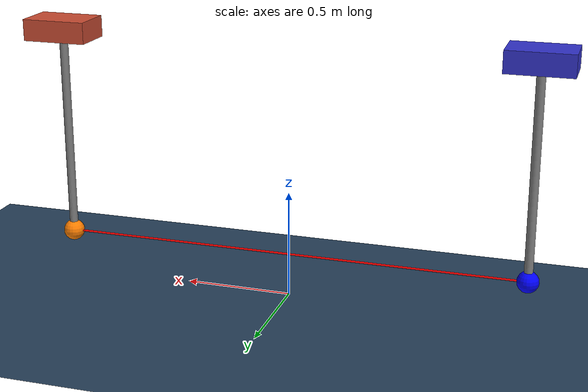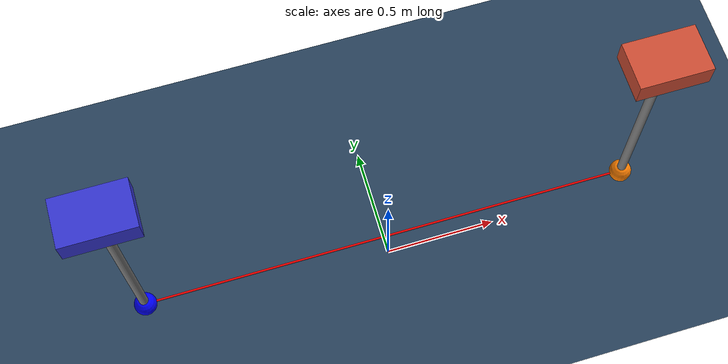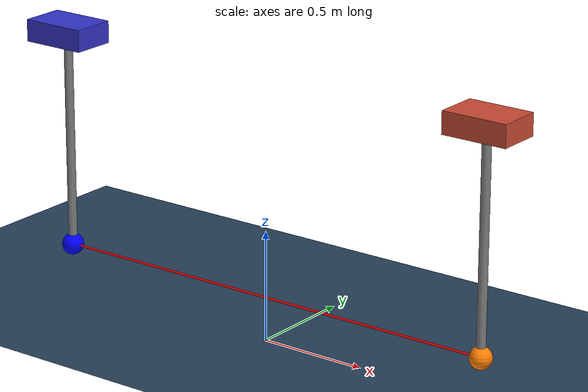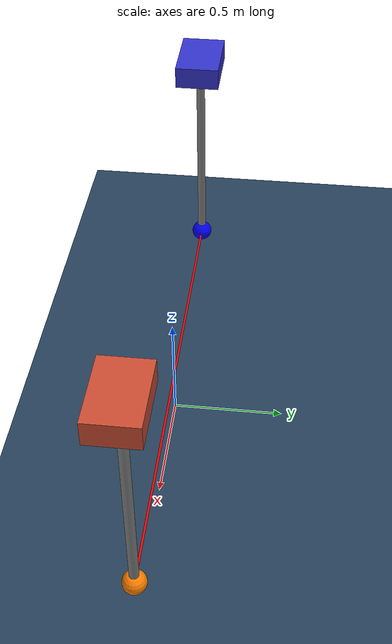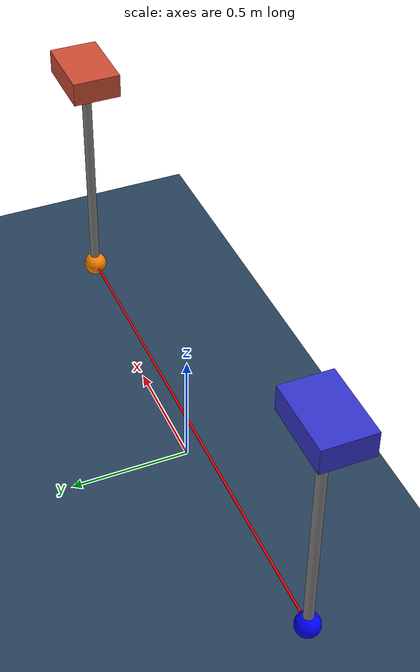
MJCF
<mujoco model="cart-pendulums">

    <compiler angle="radian"/>
    <option integrator="implicitfast" timestep="0.01" gravity="0 0 -9.81"/>

    <asset>
        <texture type="skybox" builtin="gradient" rgb1="0.6 0.7 0.9" rgb2="0.3 0.3 0.4" width="512" height="3072"/>
        <texture type="2d" name="groundplane" builtin="checker" mark="edge" rgb1="0.2 0.3 0.4" rgb2="0.1 0.2 0.3" markrgb="0.8 0.8 0.8" width="300" height="300"/>
        <material name="groundplane" texture="groundplane" texuniform="true" texrepeat="5 5" reflectance="0.2"/>
    </asset>

    <worldbody>
        <light name="global_light" directional="true" diffuse="1 1 1"/>
        <geom name="floor" pos="0 0 0" size="0 0 0.05" type="plane" material="groundplane" contype="0" conaffinity="0"/>

        <!-- fixed anchor sites for springs -->
        <site name="anchor:0" pos="-1.1 0 1.2" size="0.01" rgba="0 1 0 1"/>
        <site name="anchor:1" pos="1.1 0 1.2" size="0.01" rgba="0 1 0 1"/>

        <!-- CART + PENDULUM 0 -->
        <body name="cart:0" pos="-1.1 0 1.2">
            <joint name="slide:0" type="slide" axis="1 0 0" damping="0.1"/>
            <geom name="cart_geom:0" type="box" size="0.15 0.1 0.05" rgba="0.2 0.2 0.8 1" mass="1" contype="0" conaffinity="0"/>
            <site name="cart_site:0" pos="0 0 0" size="0.01" rgba="0 1 0 1"/>

            <!-- pendulum hanging from cart -->
            <body name="pendulum:0" pos="0 0 0.0">
                <joint name="hinge:0" type="hinge" axis="0 1 0" pos="0 0 0" limited="false" damping="0.05"/>

                <geom name="rod:0" type="capsule" fromto="0 0 0 0 0 -1" size="0.02" mass="1" contype="0" conaffinity="0"/>
                <geom name="bob:0" type="sphere" pos="0 0 -1" size="0.05" rgba="0 0 1 1" mass="0.05" contype="0" conaffinity="0"/>
                <site name="site:0" pos="0 0 -1" size="0.01"/>
            </body>
        </body>

        <!-- CART + PENDULUM 1 -->
        <body name="cart:1" pos="1.1 0 1.2">
            <joint name="slide:1" type="slide" axis="1 0 0" damping="0.1"/>
            <geom name="cart_geom:1" type="box" size="0.15 0.1 0.05" rgba="0.8 0.3 0.2 1" mass="1" contype="0" conaffinity="0"/>
            <site name="cart_site:1" pos="0 0 0" size="0.01" rgba="0 1 0 1"/>

            <body name="pendulum:1" pos="0 0 0.0">
                <joint name="hinge:1" type="hinge" axis="0 1 0" pos="0 0 0" limited="false" damping="0.05"/>

                <geom name="rod:1" type="capsule" fromto="0 0 0 0 0 -1" size="0.02" mass="1" contype="0" conaffinity="0"/>
                <geom name="bob:1" type="sphere" pos="0 0 -1" size="0.05" rgba="1 0.5 0 1" mass="0.05" contype="0" conaffinity="0"/>
                <site name="site:1" pos="0 0 -1" size="0.01"/>
            </body>
        </body>
    </worldbody>

    <tendon>
        <!-- spring keeping cart:0 near its anchor -->
        <spatial name="cart_spring_0" stiffness="1.0" damping="0.1" springlength="0" rgba="0 1 0 0.5" width="0.003">
            <site site="anchor:0"/>
            <site site="cart_site:0"/>
        </spatial>

        <!-- spring keeping cart:1 near its anchor -->
        <spatial name="cart_spring_1" stiffness="1.0" damping="1.0" springlength="0" rgba="0 1 0 0.5" width="0.003">
            <site site="anchor:1"/>
            <site site="cart_site:1"/>
        </spatial>

        <!-- spring coupling pendulum bobs -->
        <spatial name="spring_0_1" stiffness="3.0" damping="0.1" springlength="2.2" rgba="1 0 0 1" width="0.005">
            <site site="site:0"/>
            <site site="site:1"/>
        </spatial>
    </tendon>

    <actuator>
        <motor joint="hinge:0" gear="1" ctrlrange="-1 1"/>
        <motor joint="hinge:1" gear="1" ctrlrange="-1 1"/>
        <motor joint="slide:0" gear="1" ctrlrange="-1 1"/>
        <motor joint="slide:1" gear="1" ctrlrange="-1 1"/>
    </actuator>
</mujoco>
